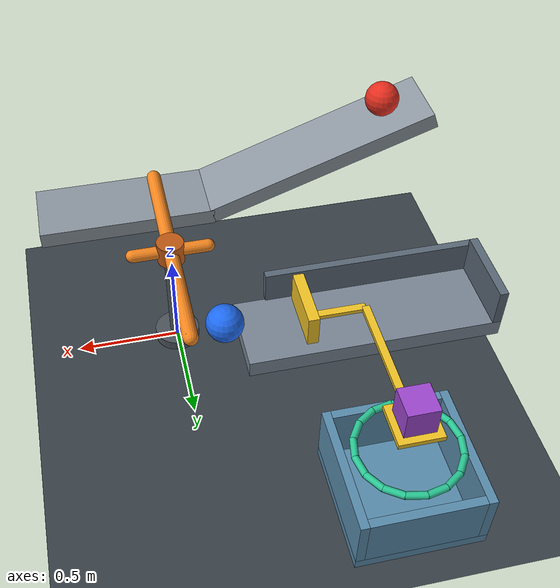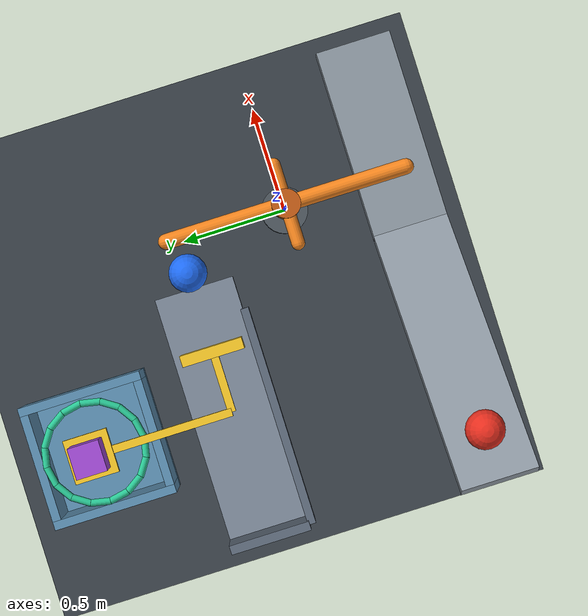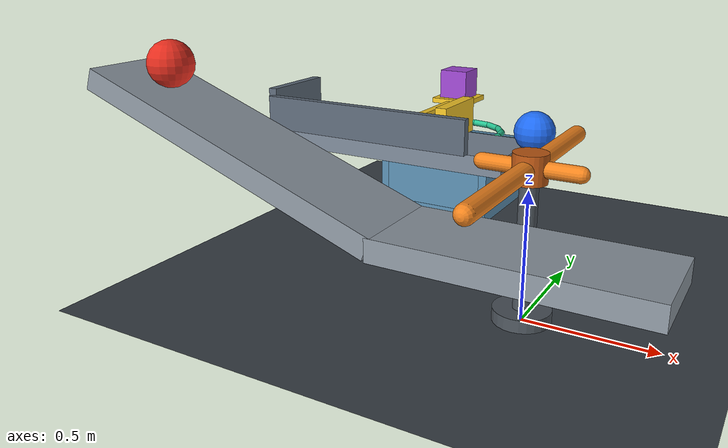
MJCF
<mujoco model="ramp_rotor_latch_drop">
  <compiler angle="degree" autolimits="true"/>
  <option timestep="0.002" gravity="0 0 -9.81" integrator="implicitfast" iterations="80"/>
  <size njmax="2000" nconmax="400"/>

  <visual>
    <headlight ambient="0.35 0.35 0.35" diffuse="0.7 0.7 0.7" specular="0.2 0.2 0.2"/>
    <map znear="0.01"/>
  </visual>

  <worldbody>
    <light name="main_light" pos="-1 -2 4" dir="0.2 0.3 -1"/>
    <camera name="overview" pos="-3.2 -3.8 3.0" xyaxes="0.82 -0.57 0 0.30 0.43 0.85"/>

    <geom name="floor" type="plane" size="5 5 0.1" pos="0 0 0" friction="0.9 0.02 0.025" condim="6" rgba="0.22 0.25 0.28 1"/>

    <!-- Ball1 begins one metre up the inclined surface from its lower end. -->
    <body name="ramp">
      <geom name="ramp_incline" type="box" pos="-0.827496 -0.5 0.667624" euler="0 20 0" size="0.6 0.17 0.04" friction="0.7 0.003 0.003" condim="6" rgba="0.55 0.59 0.63 1"/>
      <geom name="ramp_runout" type="box" pos="0.165 -0.5 0.46" size="0.435 0.17 0.04" friction="0.7 0.003 0.003" condim="6" rgba="0.55 0.59 0.63 1"/>
    </body>

    <body name="ball1" pos="-1.160621 -0.5 0.921894">
      <freejoint name="ball1_free"/>
      <geom name="ball1_geom" type="sphere" size="0.085" mass="0.5" friction="0.7 0.003 0.003" condim="6" solref="0.008 1" rgba="0.9 0.18 0.12 1"/>
    </body>

    <body name="rotor_stand">
      <geom name="rotor_stand_base" type="cylinder" pos="0 0 0.025" size="0.11 0.025" contype="0" conaffinity="0" rgba="0.3 0.33 0.36 1"/>
      <geom name="rotor_stand_shaft" type="cylinder" pos="0 0 0.295" size="0.035 0.265" contype="0" conaffinity="0" rgba="0.3 0.33 0.36 1"/>
    </body>

    <!-- The negative-y arm receives ball1; the positive-y arm drives ball2 left. -->
    <body name="rotor" pos="0 0 0.585">
      <joint name="rotor_hinge" type="hinge" axis="0 0 1" range="0 35" damping="0.008" frictionloss="0.001" armature="0.001" solreflimit="0.008 1"/>
      <geom name="rotor_long_arms" type="capsule" fromto="0 -0.55 0 0 0.55 0" size="0.035" mass="0.12" friction="0.5 0.002 0.001" solref="0.008 1" rgba="0.95 0.52 0.12 1"/>
      <geom name="rotor_cross_arms" type="capsule" fromto="-0.18 0 0 0.18 0 0" size="0.03" mass="0.045" friction="0.5 0.002 0.001" solref="0.008 1" rgba="0.95 0.52 0.12 1"/>
      <geom name="rotor_hub" type="cylinder" size="0.065 0.055" mass="0.045" rgba="0.75 0.35 0.08 1"/>
    </body>

    <body name="ball2" pos="-0.16 0.5 0.5855">
      <freejoint name="ball2_free"/>
      <geom name="ball2_geom" type="sphere" size="0.085" mass="0.3" friction="0.7 0.003 0.003" condim="6" solref="0.008 1" rgba="0.12 0.42 0.95 1"/>
    </body>

    <body name="ball2_track">
      <geom name="ball2_track_deck" type="box" pos="-0.805 0.5 0.46" size="0.575 0.18 0.04" friction="0.7 0.003 0.003" condim="6" rgba="0.48 0.53 0.59 1"/>
      <geom name="ball2_track_lower_rail" type="box" pos="-0.87 0.31 0.575" size="0.49 0.018 0.075" friction="0.35 0.002 0.001" rgba="0.36 0.41 0.47 1"/>
      <geom name="ball2_track_end_stop" type="box" pos="-1.36 0.5 0.59" size="0.02 0.18 0.09" friction="0.5 0.002 0.001" rgba="0.36 0.41 0.47 1"/>
    </body>

    <!-- The paddle and support shelf form one translating latch. -->
    <body name="latch" pos="-0.8 1.15 0.545">
      <joint name="latch_slide" type="slide" axis="-1 0 0" range="0 0.4" damping="0.02" frictionloss="0.008" solreflimit="0.008 1"/>
      <geom name="latch_shelf" type="box" size="0.1 0.1 0.012" mass="0.025" friction="0.002 0.0001 0.0001" solref="0.008 1" rgba="0.95 0.77 0.15 1"/>
      <geom name="latch_connector" type="box" pos="0 -0.37 -0.008" size="0.018 0.28 0.01" mass="0.02" friction="0.2 0.001 0.001" rgba="0.95 0.77 0.15 1"/>
      <geom name="latch_crossbar" type="box" pos="0.14 -0.65 -0.008" size="0.14 0.018 0.01" mass="0.015" friction="0.2 0.001 0.001" rgba="0.95 0.77 0.15 1"/>
      <geom name="latch_paddle" type="box" pos="0.28 -0.65 0.05" size="0.025 0.14 0.075" mass="0.045" friction="0.4 0.002 0.001" solref="0.008 1" rgba="0.95 0.77 0.15 1"/>
    </body>

    <body name="block" pos="-0.8 1.15 0.628">
      <freejoint name="block_free"/>
      <geom name="block_geom" type="box" size="0.07 0.07 0.07" mass="0.25" friction="0.7 0.005 0.004" condim="6" solref="0.008 1" rgba="0.62 0.28 0.82 1"/>
    </body>

    <!-- Sixteen primitive capsules form a clear circular drop opening. -->
    <body name="ring" pos="-0.8 1.15 0.37">
      <geom name="ring_00" type="capsule" fromto="0.23 0 0 0.212493 0.088017 0" size="0.016" rgba="0.16 0.78 0.58 1"/>
      <geom name="ring_01" type="capsule" fromto="0.212493 0.088017 0 0.162635 0.162635 0" size="0.016" rgba="0.16 0.78 0.58 1"/>
      <geom name="ring_02" type="capsule" fromto="0.162635 0.162635 0 0.088017 0.212493 0" size="0.016" rgba="0.16 0.78 0.58 1"/>
      <geom name="ring_03" type="capsule" fromto="0.088017 0.212493 0 0 0.23 0" size="0.016" rgba="0.16 0.78 0.58 1"/>
      <geom name="ring_04" type="capsule" fromto="0 0.23 0 -0.088017 0.212493 0" size="0.016" rgba="0.16 0.78 0.58 1"/>
      <geom name="ring_05" type="capsule" fromto="-0.088017 0.212493 0 -0.162635 0.162635 0" size="0.016" rgba="0.16 0.78 0.58 1"/>
      <geom name="ring_06" type="capsule" fromto="-0.162635 0.162635 0 -0.212493 0.088017 0" size="0.016" rgba="0.16 0.78 0.58 1"/>
      <geom name="ring_07" type="capsule" fromto="-0.212493 0.088017 0 -0.23 0 0" size="0.016" rgba="0.16 0.78 0.58 1"/>
      <geom name="ring_08" type="capsule" fromto="-0.23 0 0 -0.212493 -0.088017 0" size="0.016" rgba="0.16 0.78 0.58 1"/>
      <geom name="ring_09" type="capsule" fromto="-0.212493 -0.088017 0 -0.162635 -0.162635 0" size="0.016" rgba="0.16 0.78 0.58 1"/>
      <geom name="ring_10" type="capsule" fromto="-0.162635 -0.162635 0 -0.088017 -0.212493 0" size="0.016" rgba="0.16 0.78 0.58 1"/>
      <geom name="ring_11" type="capsule" fromto="-0.088017 -0.212493 0 0 -0.23 0" size="0.016" rgba="0.16 0.78 0.58 1"/>
      <geom name="ring_12" type="capsule" fromto="0 -0.23 0 0.088017 -0.212493 0" size="0.016" rgba="0.16 0.78 0.58 1"/>
      <geom name="ring_13" type="capsule" fromto="0.088017 -0.212493 0 0.162635 -0.162635 0" size="0.016" rgba="0.16 0.78 0.58 1"/>
      <geom name="ring_14" type="capsule" fromto="0.162635 -0.162635 0 0.212493 -0.088017 0" size="0.016" rgba="0.16 0.78 0.58 1"/>
      <geom name="ring_15" type="capsule" fromto="0.212493 -0.088017 0 0.23 0 0" size="0.016" rgba="0.16 0.78 0.58 1"/>
    </body>

    <body name="box" pos="-0.8 1.15 0">
      <geom name="box_bottom" type="box" pos="0 0 0.025" size="0.29 0.29 0.025" friction="0.9 0.01 0.01" condim="6" solref="0.008 1" rgba="0.35 0.55 0.68 1"/>
      <geom name="box_left_wall" type="box" pos="-0.27 0 0.18" size="0.02 0.29 0.13" friction="0.8 0.005 0.005" condim="6" rgba="0.35 0.55 0.68 1"/>
      <geom name="box_right_wall" type="box" pos="0.27 0 0.18" size="0.02 0.29 0.13" friction="0.8 0.005 0.005" condim="6" rgba="0.35 0.55 0.68 1"/>
      <geom name="box_front_wall" type="box" pos="0 -0.27 0.18" size="0.25 0.02 0.13" friction="0.8 0.005 0.005" condim="6" rgba="0.35 0.55 0.68 1"/>
      <geom name="box_back_wall" type="box" pos="0 0.27 0.18" size="0.25 0.02 0.13" friction="0.8 0.005 0.005" condim="6" rgba="0.35 0.55 0.68 1"/>
    </body>
  </worldbody>

  <contact>
    <pair name="slippery_payload_support" geom1="block_geom" geom2="latch_shelf" condim="3" friction="0.002 0.002 0.0001 0.0001 0.0001" solref="0.008 1"/>
  </contact>

  <keyframe>
    <key name="start" qpos="-1.160621 -0.5 0.921894 1 0 0 0 0 -0.16 0.5 0.5855 1 0 0 0 0 -0.8 1.15 0.628 1 0 0 0"/>
  </keyframe>
</mujoco>
